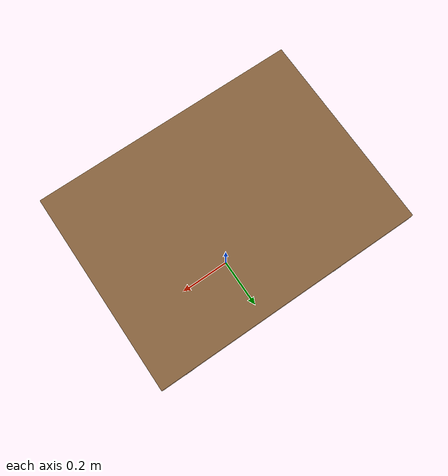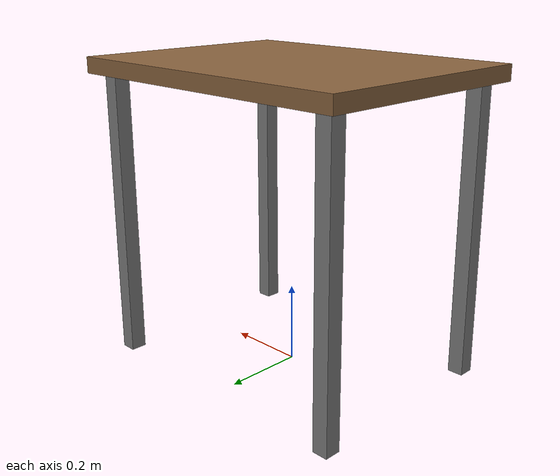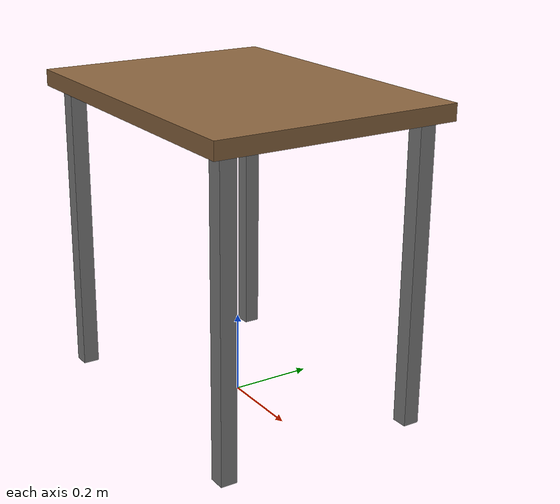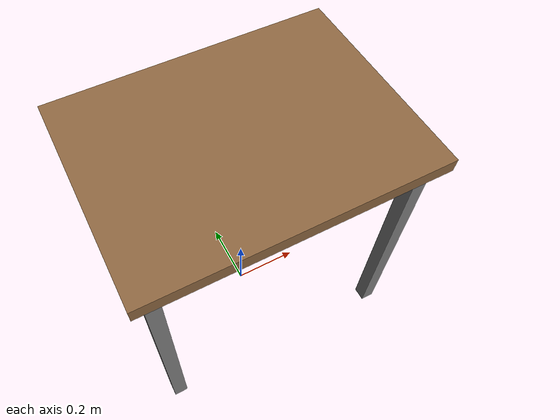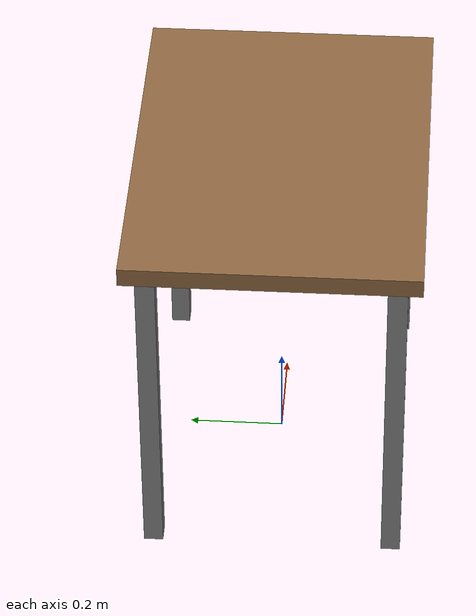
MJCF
<mujoco model="table">
  <worldbody>
    <body name="table" pos="0 0 0">
      <geom name="table_top" type="box" size="0.4 0.3 0.02" pos="0 0 0.75"
            rgba="0.55 0.4 0.25 1"/>
      <geom name="table_leg_fl" type="box" size="0.02 0.02 0.375" pos="0.35 0.25 0.375"/>
      <geom name="table_leg_fr" type="box" size="0.02 0.02 0.375" pos="0.35 -0.25 0.375"/>
      <geom name="table_leg_bl" type="box" size="0.02 0.02 0.375" pos="-0.35 0.25 0.375"/>
      <geom name="table_leg_br" type="box" size="0.02 0.02 0.375" pos="-0.35 -0.25 0.375"/>
    </body>
  </worldbody>
</mujoco>
